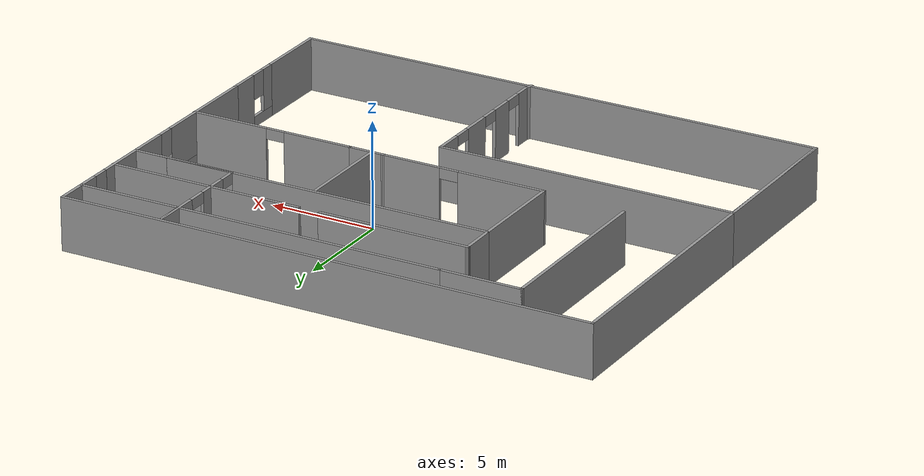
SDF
<?xml version='1.0'?>
<sdf version='1.6'>
  <model name='factory_wall'>
    <pose frame=''>-2.40759 -1.85219 0 0 -0 0</pose>
    <link name='Wall_11'>
      <pose frame=''>8.76238 -0.332391 0 0 -0 0</pose>
      <visual name='Wall_11_Visual_0'>
        <pose frame=''>-2.32414 0 1.25 0 -0 0</pose>
        <geometry>
          <box>
            <size>3.35171 0.15 2.5</size>
          </box>
        </geometry>
        <material>
          <script>
            <uri>file://media/materials/scripts/gazebo.material</uri>
            <name>Gazebo/Grey</name>
          </script>
          <ambient>1 1 1 1</ambient>
        </material>
        <meta>
          <layer>0</layer>
        </meta>
      </visual>
      <collision name='Wall_11_Collision_0'>
        <geometry>
          <box>
            <size>3.35171 0.15 2.5</size>
          </box>
        </geometry>
        <pose frame=''>-2.32414 0 1.25 0 -0 0</pose>
      </collision>
      <visual name='Wall_11_Visual_1'>
        <pose frame=''>2.12586 0 1.25 0 -0 0</pose>
        <geometry>
          <box>
            <size>3.74829 0.15 2.5</size>
          </box>
        </geometry>
        <material>
          <script>
            <uri>file://media/materials/scripts/gazebo.material</uri>
            <name>Gazebo/Grey</name>
          </script>
          <ambient>1 1 1 1</ambient>
        </material>
        <meta>
          <layer>0</layer>
        </meta>
      </visual>
      <collision name='Wall_11_Collision_1'>
        <geometry>
          <box>
            <size>3.74829 0.15 2.5</size>
          </box>
        </geometry>
        <pose frame=''>2.12586 0 1.25 0 -0 0</pose>
      </collision>
      <visual name='Wall_11_Visual_2'>
        <pose frame=''>-0.198286 0 2.25 0 -0 0</pose>
        <geometry>
          <box>
            <size>0.9 0.15 0.5</size>
          </box>
        </geometry>
        <material>
          <script>
            <uri>file://media/materials/scripts/gazebo.material</uri>
            <name>Gazebo/Grey</name>
          </script>
          <ambient>1 1 1 1</ambient>
        </material>
        <meta>
          <layer>0</layer>
        </meta>
      </visual>
      <collision name='Wall_11_Collision_2'>
        <geometry>
          <box>
            <size>0.9 0.15 0.5</size>
          </box>
        </geometry>
        <pose frame=''>-0.198286 0 2.25 0 -0 0</pose>
      </collision>
    </link>
    <link name='Wall_13'>
      <pose frame=''>-0.762375 -0.322535 0 0 -0 3.14159</pose>
      <visual name='Wall_13_Visual_0'>
        <pose frame=''>-2.55074 0 1.25 0 -0 0</pose>
        <geometry>
          <box>
            <size>2.89852 0.15 2.5</size>
          </box>
        </geometry>
        <material>
          <script>
            <uri>file://media/materials/scripts/gazebo.material</uri>
            <name>Gazebo/Grey</name>
          </script>
          <ambient>1 1 1 1</ambient>
        </material>
        <meta>
          <layer>0</layer>
        </meta>
      </visual>
      <collision name='Wall_13_Collision_0'>
        <geometry>
          <box>
            <size>2.89852 0.15 2.5</size>
          </box>
        </geometry>
        <pose frame=''>-2.55074 0 1.25 0 -0 0</pose>
      </collision>
      <visual name='Wall_13_Visual_1'>
        <pose frame=''>1.89926 0 1.25 0 -0 0</pose>
        <geometry>
          <box>
            <size>4.20148 0.15 2.5</size>
          </box>
        </geometry>
        <material>
          <script>
            <uri>file://media/materials/scripts/gazebo.material</uri>
            <name>Gazebo/Grey</name>
          </script>
          <ambient>1 1 1 1</ambient>
        </material>
        <meta>
          <layer>0</layer>
        </meta>
      </visual>
      <collision name='Wall_13_Collision_1'>
        <geometry>
          <box>
            <size>4.20148 0.15 2.5</size>
          </box>
        </geometry>
        <pose frame=''>1.89926 0 1.25 0 -0 0</pose>
      </collision>
      <visual name='Wall_13_Visual_2'>
        <pose frame=''>-0.651482 0 2.25 0 -0 0</pose>
        <geometry>
          <box>
            <size>0.9 0.15 0.5</size>
          </box>
        </geometry>
        <material>
          <script>
            <uri>file://media/materials/scripts/gazebo.material</uri>
            <name>Gazebo/Grey</name>
          </script>
          <ambient>1 1 1 1</ambient>
        </material>
        <meta>
          <layer>0</layer>
        </meta>
      </visual>
      <collision name='Wall_13_Collision_2'>
        <geometry>
          <box>
            <size>0.9 0.15 0.5</size>
          </box>
        </geometry>
        <pose frame=''>-0.651482 0 2.25 0 -0 0</pose>
      </collision>
    </link>
    <link name='Wall_15'>
      <collision name='Wall_15_Collision'>
        <geometry>
          <box>
            <size>5 0.15 2.5</size>
          </box>
        </geometry>
        <pose frame=''>0 0 1.25 0 -0 0</pose>
      </collision>
      <visual name='Wall_15_Visual'>
        <pose frame=''>0 0 1.25 0 -0 0</pose>
        <geometry>
          <box>
            <size>5 0.15 2.5</size>
          </box>
        </geometry>
        <material>
          <script>
            <uri>file://media/materials/scripts/gazebo.material</uri>
            <name>Gazebo/Grey</name>
          </script>
          <ambient>1 1 1 1</ambient>
        </material>
        <meta>
          <layer>0</layer>
        </meta>
      </visual>
      <pose frame=''>-4.68738 2.10247 0 0 -0 1.5708</pose>
    </link>
    <link name='Wall_16'>
      <collision name='Wall_16_Collision'>
        <geometry>
          <box>
            <size>17.5 0.15 2.5</size>
          </box>
        </geometry>
        <pose frame=''>0 0 1.25 0 -0 0</pose>
      </collision>
      <visual name='Wall_16_Visual'>
        <pose frame=''>0 0 1.25 0 -0 0</pose>
        <geometry>
          <box>
            <size>17.5 0.15 2.5</size>
          </box>
        </geometry>
        <material>
          <script>
            <uri>file://media/materials/scripts/gazebo.material</uri>
            <name>Gazebo/Grey</name>
          </script>
          <ambient>1 1 1 1</ambient>
        </material>
        <meta>
          <layer>0</layer>
        </meta>
      </visual>
      <pose frame=''>3.98762 4.52747 0 0 -0 0</pose>
    </link>
    <link name='Wall_17'>
      <pose frame=''>12.6626 2.10247 0 0 -0 -1.5708</pose>
      <visual name='Wall_17_Visual_0'>
        <pose frame=''>-1.48655 0 1.25 0 -0 0</pose>
        <geometry>
          <box>
            <size>2.0269 0.15 2.5</size>
          </box>
        </geometry>
        <material>
          <script>
            <uri>file://media/materials/scripts/gazebo.material</uri>
            <name>Gazebo/Grey</name>
          </script>
          <ambient>1 1 1 1</ambient>
        </material>
        <meta>
          <layer>0</layer>
        </meta>
      </visual>
      <collision name='Wall_17_Collision_0'>
        <geometry>
          <box>
            <size>2.0269 0.15 2.5</size>
          </box>
        </geometry>
        <pose frame=''>-1.48655 0 1.25 0 -0 0</pose>
      </collision>
      <visual name='Wall_17_Visual_1'>
        <pose frame=''>1.01345 0 0.25 0 -0 0</pose>
        <geometry>
          <box>
            <size>2.9731 0.15 0.5</size>
          </box>
        </geometry>
        <material>
          <script>
            <uri>file://media/materials/scripts/gazebo.material</uri>
            <name>Gazebo/Grey</name>
          </script>
          <ambient>1 1 1 1</ambient>
        </material>
        <meta>
          <layer>0</layer>
        </meta>
      </visual>
      <collision name='Wall_17_Collision_1'>
        <geometry>
          <box>
            <size>2.9731 0.15 0.5</size>
          </box>
        </geometry>
        <pose frame=''>1.01345 0 0.25 0 -0 0</pose>
      </collision>
      <visual name='Wall_17_Visual_2'>
        <pose frame=''>1.41345 0 1.5 0 -0 0</pose>
        <geometry>
          <box>
            <size>2.1731 0.15 2</size>
          </box>
        </geometry>
        <material>
          <script>
            <uri>file://media/materials/scripts/gazebo.material</uri>
            <name>Gazebo/Grey</name>
          </script>
          <ambient>1 1 1 1</ambient>
        </material>
        <meta>
          <layer>0</layer>
        </meta>
      </visual>
      <collision name='Wall_17_Collision_2'>
        <geometry>
          <box>
            <size>2.1731 0.15 2</size>
          </box>
        </geometry>
        <pose frame=''>1.41345 0 1.5 0 -0 0</pose>
      </collision>
      <visual name='Wall_17_Visual_3'>
        <pose frame=''>-0.073103 0 1.9 0 -0 0</pose>
        <geometry>
          <box>
            <size>0.8 0.15 1.2</size>
          </box>
        </geometry>
        <material>
          <script>
            <uri>file://media/materials/scripts/gazebo.material</uri>
            <name>Gazebo/Grey</name>
          </script>
          <ambient>1 1 1 1</ambient>
        </material>
        <meta>
          <layer>0</layer>
        </meta>
      </visual>
      <collision name='Wall_17_Collision_3'>
        <geometry>
          <box>
            <size>0.8 0.15 1.2</size>
          </box>
        </geometry>
        <pose frame=''>-0.073103 0 1.9 0 -0 0</pose>
      </collision>
    </link>
    <link name='Wall_19'>
      <collision name='Wall_19_Collision'>
        <geometry>
          <box>
            <size>3.5 0.15 2.5</size>
          </box>
        </geometry>
        <pose frame=''>0 0 1.25 0 -0 0</pose>
      </collision>
      <visual name='Wall_19_Visual'>
        <pose frame=''>0 0 1.25 0 -0 0</pose>
        <geometry>
          <box>
            <size>3.5 0.15 2.5</size>
          </box>
        </geometry>
        <material>
          <script>
            <uri>file://media/materials/scripts/gazebo.material</uri>
            <name>Gazebo/Grey</name>
          </script>
          <ambient>1 1 1 1</ambient>
        </material>
        <meta>
          <layer>0</layer>
        </meta>
      </visual>
      <pose frame=''>12.6626 -1.99754 0 0 -0 -1.5708</pose>
    </link>
    <link name='Wall_21'>
      <pose frame=''>12.6626 -5.09753 0 0 -0 -1.5708</pose>
      <visual name='Wall_21_Visual_0'>
        <pose frame=''>-0.751301 0 1.25 0 -0 0</pose>
        <geometry>
          <box>
            <size>1.4974 0.15 2.5</size>
          </box>
        </geometry>
        <material>
          <script>
            <uri>file://media/materials/scripts/gazebo.material</uri>
            <name>Gazebo/Grey</name>
          </script>
          <ambient>1 1 1 1</ambient>
        </material>
        <meta>
          <layer>0</layer>
        </meta>
      </visual>
      <collision name='Wall_21_Collision_0'>
        <geometry>
          <box>
            <size>1.4974 0.15 2.5</size>
          </box>
        </geometry>
        <pose frame=''>-0.751301 0 1.25 0 -0 0</pose>
      </collision>
      <visual name='Wall_21_Visual_1'>
        <pose frame=''>0.748699 0 0.25 0 -0 0</pose>
        <geometry>
          <box>
            <size>1.5026 0.15 0.5</size>
          </box>
        </geometry>
        <material>
          <script>
            <uri>file://media/materials/scripts/gazebo.material</uri>
            <name>Gazebo/Grey</name>
          </script>
          <ambient>1 1 1 1</ambient>
        </material>
        <meta>
          <layer>0</layer>
        </meta>
      </visual>
      <collision name='Wall_21_Collision_1'>
        <geometry>
          <box>
            <size>1.5026 0.15 0.5</size>
          </box>
        </geometry>
        <pose frame=''>0.748699 0 0.25 0 -0 0</pose>
      </collision>
      <visual name='Wall_21_Visual_2'>
        <pose frame=''>1.1487 0 1.5 0 -0 0</pose>
        <geometry>
          <box>
            <size>0.702603 0.15 2</size>
          </box>
        </geometry>
        <material>
          <script>
            <uri>file://media/materials/scripts/gazebo.material</uri>
            <name>Gazebo/Grey</name>
          </script>
          <ambient>1 1 1 1</ambient>
        </material>
        <meta>
          <layer>0</layer>
        </meta>
      </visual>
      <collision name='Wall_21_Collision_2'>
        <geometry>
          <box>
            <size>0.702603 0.15 2</size>
          </box>
        </geometry>
        <pose frame=''>1.1487 0 1.5 0 -0 0</pose>
      </collision>
      <visual name='Wall_21_Visual_3'>
        <pose frame=''>0.397397 0 1.9 0 -0 0</pose>
        <geometry>
          <box>
            <size>0.8 0.15 1.2</size>
          </box>
        </geometry>
        <material>
          <script>
            <uri>file://media/materials/scripts/gazebo.material</uri>
            <name>Gazebo/Grey</name>
          </script>
          <ambient>1 1 1 1</ambient>
        </material>
        <meta>
          <layer>0</layer>
        </meta>
      </visual>
      <collision name='Wall_21_Collision_3'>
        <geometry>
          <box>
            <size>0.8 0.15 1.2</size>
          </box>
        </geometry>
        <pose frame=''>0.397397 0 1.9 0 -0 0</pose>
      </collision>
    </link>
    <link name='Wall_23'>
      <collision name='Wall_23_Collision'>
        <geometry>
          <box>
            <size>3.75 0.15 2.5</size>
          </box>
        </geometry>
        <pose frame=''>0 0 1.25 0 -0 0</pose>
      </collision>
      <visual name='Wall_23_Visual'>
        <pose frame=''>0 0 1.25 0 -0 0</pose>
        <geometry>
          <box>
            <size>3.75 0.15 2.5</size>
          </box>
        </geometry>
        <material>
          <script>
            <uri>file://media/materials/scripts/gazebo.material</uri>
            <name>Gazebo/Grey</name>
          </script>
          <ambient>1 1 1 1</ambient>
        </material>
        <meta>
          <layer>0</layer>
        </meta>
      </visual>
      <pose frame=''>12.6626 -8.32254 0 0 -0 -1.5708</pose>
    </link>
    <link name='Wall_26'>
      <collision name='Wall_26_Collision'>
        <geometry>
          <box>
            <size>25.5 0.15 2.5</size>
          </box>
        </geometry>
        <pose frame=''>0 0 1.25 0 -0 0</pose>
      </collision>
      <visual name='Wall_26_Visual'>
        <pose frame=''>0 0 1.25 0 -0 0</pose>
        <geometry>
          <box>
            <size>25.5 0.15 2.5</size>
          </box>
        </geometry>
        <material>
          <script>
            <uri>file://media/materials/scripts/gazebo.material</uri>
            <name>Gazebo/Grey</name>
          </script>
          <ambient>1 1 1 1</ambient>
        </material>
        <meta>
          <layer>0</layer>
        </meta>
      </visual>
      <pose frame=''>-0.012375 -10.1225 0 0 -0 3.14159</pose>
    </link>
    <link name='Wall_27'>
      <collision name='Wall_27_Collision'>
        <geometry>
          <box>
            <size>20.5 0.15 2.5</size>
          </box>
        </geometry>
        <pose frame=''>0 0 1.25 0 -0 0</pose>
      </collision>
      <visual name='Wall_27_Visual'>
        <pose frame=''>0 0 1.25 0 -0 0</pose>
        <geometry>
          <box>
            <size>20.5 0.15 2.5</size>
          </box>
        </geometry>
        <material>
          <script>
            <uri>file://media/materials/scripts/gazebo.material</uri>
            <name>Gazebo/Grey</name>
          </script>
          <ambient>1 1 1 1</ambient>
        </material>
        <meta>
          <layer>0</layer>
        </meta>
      </visual>
      <pose frame=''>-12.6874 0.052465 0 0 -0 1.5708</pose>
    </link>
    <link name='Wall_29'>
      <collision name='Wall_29_Collision'>
        <geometry>
          <box>
            <size>25.5 0.15 2.5</size>
          </box>
        </geometry>
        <pose frame=''>0 0 1.25 0 -0 0</pose>
      </collision>
      <visual name='Wall_29_Visual'>
        <pose frame=''>0 0 1.25 0 -0 0</pose>
        <geometry>
          <box>
            <size>25.5 0.15 2.5</size>
          </box>
        </geometry>
        <material>
          <script>
            <uri>file://media/materials/scripts/gazebo.material</uri>
            <name>Gazebo/Grey</name>
          </script>
          <ambient>1 1 1 1</ambient>
        </material>
        <meta>
          <layer>0</layer>
        </meta>
      </visual>
      <pose frame=''>-0.012375 10.2275 0 0 -0 0</pose>
    </link>
    <link name='Wall_30'>
      <pose frame=''>12.6626 7.37746 0 0 -0 -1.5708</pose>
      <visual name='Wall_30_Visual_0'>
        <pose frame=''>-1.65365 0 1.25 0 -0 0</pose>
        <geometry>
          <box>
            <size>2.5427 0.15 2.5</size>
          </box>
        </geometry>
        <material>
          <script>
            <uri>file://media/materials/scripts/gazebo.material</uri>
            <name>Gazebo/Grey</name>
          </script>
          <ambient>1 1 1 1</ambient>
        </material>
        <meta>
          <layer>0</layer>
        </meta>
      </visual>
      <collision name='Wall_30_Collision_0'>
        <geometry>
          <box>
            <size>2.5427 0.15 2.5</size>
          </box>
        </geometry>
        <pose frame=''>-1.65365 0 1.25 0 -0 0</pose>
      </collision>
      <visual name='Wall_30_Visual_1'>
        <pose frame=''>1.27135 0 0.25 0 -0 0</pose>
        <geometry>
          <box>
            <size>3.3073 0.15 0.5</size>
          </box>
        </geometry>
        <material>
          <script>
            <uri>file://media/materials/scripts/gazebo.material</uri>
            <name>Gazebo/Grey</name>
          </script>
          <ambient>1 1 1 1</ambient>
        </material>
        <meta>
          <layer>0</layer>
        </meta>
      </visual>
      <collision name='Wall_30_Collision_1'>
        <geometry>
          <box>
            <size>3.3073 0.15 0.5</size>
          </box>
        </geometry>
        <pose frame=''>1.27135 0 0.25 0 -0 0</pose>
      </collision>
      <visual name='Wall_30_Visual_2'>
        <pose frame=''>1.67135 0 1.5 0 -0 0</pose>
        <geometry>
          <box>
            <size>2.5073 0.15 2</size>
          </box>
        </geometry>
        <material>
          <script>
            <uri>file://media/materials/scripts/gazebo.material</uri>
            <name>Gazebo/Grey</name>
          </script>
          <ambient>1 1 1 1</ambient>
        </material>
        <meta>
          <layer>0</layer>
        </meta>
      </visual>
      <collision name='Wall_30_Collision_2'>
        <geometry>
          <box>
            <size>2.5073 0.15 2</size>
          </box>
        </geometry>
        <pose frame=''>1.67135 0 1.5 0 -0 0</pose>
      </collision>
      <visual name='Wall_30_Visual_3'>
        <pose frame=''>0.017697 0 1.9 0 -0 0</pose>
        <geometry>
          <box>
            <size>0.8 0.15 1.2</size>
          </box>
        </geometry>
        <material>
          <script>
            <uri>file://media/materials/scripts/gazebo.material</uri>
            <name>Gazebo/Grey</name>
          </script>
          <ambient>1 1 1 1</ambient>
        </material>
        <meta>
          <layer>0</layer>
        </meta>
      </visual>
      <collision name='Wall_30_Collision_3'>
        <geometry>
          <box>
            <size>0.8 0.15 1.2</size>
          </box>
        </geometry>
        <pose frame=''>0.017697 0 1.9 0 -0 0</pose>
      </collision>
    </link>
    <link name='Wall_32'>
      <collision name='Wall_32_Collision'>
        <geometry>
          <box>
            <size>5 0.15 2.5</size>
          </box>
        </geometry>
        <pose frame=''>0 0 1.25 0 -0 0</pose>
      </collision>
      <visual name='Wall_32_Visual'>
        <pose frame=''>0 0 1.25 0 -0 0</pose>
        <geometry>
          <box>
            <size>5 0.15 2.5</size>
          </box>
        </geometry>
        <material>
          <script>
            <uri>file://media/materials/scripts/gazebo.material</uri>
            <name>Gazebo/Grey</name>
          </script>
          <ambient>1 1 1 1</ambient>
        </material>
        <meta>
          <layer>0</layer>
        </meta>
      </visual>
      <pose frame=''>10.2376 4.52747 0 0 -0 3.14159</pose>
    </link>
    <link name='Wall_33'>
      <pose frame=''>7.81262 7.32747 0 0 -0 1.5708</pose>
      <visual name='Wall_33_Visual_0'>
        <pose frame=''>-2.86985 0 1.25 0 -0 0</pose>
        <geometry>
          <box>
            <size>0.010298 0.15 2.5</size>
          </box>
        </geometry>
        <material>
          <script>
            <uri>file://media/materials/scripts/gazebo.material</uri>
            <name>Gazebo/Grey</name>
          </script>
          <ambient>1 1 1 1</ambient>
        </material>
        <meta>
          <layer>0</layer>
        </meta>
      </visual>
      <collision name='Wall_33_Collision_0'>
        <geometry>
          <box>
            <size>0.010298 0.15 2.5</size>
          </box>
        </geometry>
        <pose frame=''>-2.86985 0 1.25 0 -0 0</pose>
      </collision>
      <visual name='Wall_33_Visual_1'>
        <pose frame=''>-1.19 0 1.25 0 -0 0</pose>
        <geometry>
          <box>
            <size>1.54941 0.15 2.5</size>
          </box>
        </geometry>
        <material>
          <script>
            <uri>file://media/materials/scripts/gazebo.material</uri>
            <name>Gazebo/Grey</name>
          </script>
          <ambient>1 1 1 1</ambient>
        </material>
        <meta>
          <layer>0</layer>
        </meta>
      </visual>
      <collision name='Wall_33_Collision_1'>
        <geometry>
          <box>
            <size>1.54941 0.15 2.5</size>
          </box>
        </geometry>
        <pose frame=''>-1.19 0 1.25 0 -0 0</pose>
      </collision>
      <visual name='Wall_33_Visual_2'>
        <pose frame=''>1.67985 0 1.25 0 -0 0</pose>
        <geometry>
          <box>
            <size>2.3903 0.15 2.5</size>
          </box>
        </geometry>
        <material>
          <script>
            <uri>file://media/materials/scripts/gazebo.material</uri>
            <name>Gazebo/Grey</name>
          </script>
          <ambient>1 1 1 1</ambient>
        </material>
        <meta>
          <layer>0</layer>
        </meta>
      </visual>
      <collision name='Wall_33_Collision_2'>
        <geometry>
          <box>
            <size>2.3903 0.15 2.5</size>
          </box>
        </geometry>
        <pose frame=''>1.67985 0 1.25 0 -0 0</pose>
      </collision>
      <visual name='Wall_33_Visual_3'>
        <pose frame=''>-2.4147 0 2.25 0 -0 0</pose>
        <geometry>
          <box>
            <size>0.9 0.15 0.5</size>
          </box>
        </geometry>
        <material>
          <script>
            <uri>file://media/materials/scripts/gazebo.material</uri>
            <name>Gazebo/Grey</name>
          </script>
          <ambient>1 1 1 1</ambient>
        </material>
        <meta>
          <layer>0</layer>
        </meta>
      </visual>
      <collision name='Wall_33_Collision_3'>
        <geometry>
          <box>
            <size>0.9 0.15 0.5</size>
          </box>
        </geometry>
        <pose frame=''>-2.4147 0 2.25 0 -0 0</pose>
      </collision>
      <visual name='Wall_33_Visual_4'>
        <pose frame=''>0.034704 0 2.25 0 -0 0</pose>
        <geometry>
          <box>
            <size>0.9 0.15 0.5</size>
          </box>
        </geometry>
        <material>
          <script>
            <uri>file://media/materials/scripts/gazebo.material</uri>
            <name>Gazebo/Grey</name>
          </script>
          <ambient>1 1 1 1</ambient>
        </material>
        <meta>
          <layer>0</layer>
        </meta>
      </visual>
      <collision name='Wall_33_Collision_4'>
        <geometry>
          <box>
            <size>0.9 0.15 0.5</size>
          </box>
        </geometry>
        <pose frame=''>0.034704 0 2.25 0 -0 0</pose>
      </collision>
    </link>
    <link name='Wall_35'>
      <collision name='Wall_35_Collision'>
        <geometry>
          <box>
            <size>1.82478 0.15 2.5</size>
          </box>
        </geometry>
        <pose frame=''>0 0 1.25 0 -0 0</pose>
      </collision>
      <visual name='Wall_35_Visual'>
        <pose frame=''>0 0 1.25 0 -0 0</pose>
        <geometry>
          <box>
            <size>1.82478 0.15 2.5</size>
          </box>
        </geometry>
        <material>
          <script>
            <uri>file://media/materials/scripts/gazebo.material</uri>
            <name>Gazebo/Grey</name>
          </script>
          <ambient>1 1 1 1</ambient>
        </material>
        <meta>
          <layer>0</layer>
        </meta>
      </visual>
      <pose frame=''>4 -0.327463 0 0 -0 3.13571</pose>
    </link>
    <link name='Wall_39'>
      <collision name='Wall_39_Collision'>
        <geometry>
          <box>
            <size>5 0.15 2.5</size>
          </box>
        </geometry>
        <pose frame=''>0 0 1.25 0 -0 0</pose>
      </collision>
      <visual name='Wall_39_Visual'>
        <pose frame=''>0 0 1.25 0 -0 0</pose>
        <geometry>
          <box>
            <size>5 0.15 2.5</size>
          </box>
        </geometry>
        <material>
          <script>
            <uri>file://media/materials/scripts/gazebo.material</uri>
            <name>Gazebo/Grey</name>
          </script>
          <ambient>1 1 1 1</ambient>
        </material>
        <meta>
          <layer>0</layer>
        </meta>
      </visual>
      <pose frame=''>3.7367 2.09148 0 0 -0 -1.5708</pose>
    </link>
    <link name='Wall_43'>
      <pose frame=''>7.81262 9.45247 0 0 -0 -1.5708</pose>
      <visual name='Wall_43_Visual_0'>
        <pose frame=''>-0.716597 0 1.25 0 -0 0</pose>
        <geometry>
          <box>
            <size>0.066805 0.15 2.5</size>
          </box>
        </geometry>
        <material>
          <script>
            <uri>file://media/materials/scripts/gazebo.material</uri>
            <name>Gazebo/Grey</name>
          </script>
          <ambient>1 1 1 1</ambient>
        </material>
        <meta>
          <layer>0</layer>
        </meta>
      </visual>
      <collision name='Wall_43_Collision_0'>
        <geometry>
          <box>
            <size>0.066805 0.15 2.5</size>
          </box>
        </geometry>
        <pose frame=''>-0.716597 0 1.25 0 -0 0</pose>
      </collision>
      <visual name='Wall_43_Visual_1'>
        <pose frame=''>0.483403 0 1.25 0 -0 0</pose>
        <geometry>
          <box>
            <size>0.533195 0.15 2.5</size>
          </box>
        </geometry>
        <material>
          <script>
            <uri>file://media/materials/scripts/gazebo.material</uri>
            <name>Gazebo/Grey</name>
          </script>
          <ambient>1 1 1 1</ambient>
        </material>
        <meta>
          <layer>0</layer>
        </meta>
      </visual>
      <collision name='Wall_43_Collision_1'>
        <geometry>
          <box>
            <size>0.533195 0.15 2.5</size>
          </box>
        </geometry>
        <pose frame=''>0.483403 0 1.25 0 -0 0</pose>
      </collision>
      <visual name='Wall_43_Visual_2'>
        <pose frame=''>-0.233195 0 2.25 0 -0 0</pose>
        <geometry>
          <box>
            <size>0.9 0.15 0.5</size>
          </box>
        </geometry>
        <material>
          <script>
            <uri>file://media/materials/scripts/gazebo.material</uri>
            <name>Gazebo/Grey</name>
          </script>
          <ambient>1 1 1 1</ambient>
        </material>
        <meta>
          <layer>0</layer>
        </meta>
      </visual>
      <collision name='Wall_43_Collision_2'>
        <geometry>
          <box>
            <size>0.9 0.15 0.5</size>
          </box>
        </geometry>
        <pose frame=''>-0.233195 0 2.25 0 -0 0</pose>
      </collision>
    </link>
    <link name='Wall_45'>
      <collision name='Wall_45_Collision'>
        <geometry>
          <box>
            <size>5 0.15 2.5</size>
          </box>
        </geometry>
        <pose frame=''>0 0 1.25 0 -0 0</pose>
      </collision>
      <visual name='Wall_45_Visual'>
        <pose frame=''>0 0 1.25 0 -0 0</pose>
        <geometry>
          <box>
            <size>5 0.15 2.5</size>
          </box>
        </geometry>
        <material>
          <script>
            <uri>file://media/materials/scripts/gazebo.material</uri>
            <name>Gazebo/Grey</name>
          </script>
          <ambient>1 1 1 1</ambient>
        </material>
        <meta>
          <layer>0</layer>
        </meta>
      </visual>
      <pose frame=''>10.2376 8.77746 0 0 -0 0</pose>
    </link>
    <link name='Wall_48'>
      <collision name='Wall_48_Collision'>
        <geometry>
          <box>
            <size>5 0.15 2.5</size>
          </box>
        </geometry>
        <pose frame=''>0 0 1.25 0 -0 0</pose>
      </collision>
      <visual name='Wall_48_Visual'>
        <pose frame=''>0 0 1.25 0 -0 0</pose>
        <geometry>
          <box>
            <size>5 0.15 2.5</size>
          </box>
        </geometry>
        <material>
          <script>
            <uri>file://media/materials/scripts/gazebo.material</uri>
            <name>Gazebo/Grey</name>
          </script>
          <ambient>1 1 1 1</ambient>
        </material>
        <meta>
          <layer>0</layer>
        </meta>
      </visual>
      <pose frame=''>10.2529 6.2452 0 0 -0 0</pose>
    </link>
    <link name='Wall_56'>
      <collision name='Wall_56_Collision'>
        <geometry>
          <box>
            <size>12.75 0.15 2.5</size>
          </box>
        </geometry>
        <pose frame=''>0 0 1.25 0 -0 0</pose>
      </collision>
      <visual name='Wall_56_Visual'>
        <pose frame=''>0 0 1.25 0 -0 0</pose>
        <geometry>
          <box>
            <size>12.75 0.15 2.5</size>
          </box>
        </geometry>
        <material>
          <script>
            <uri>file://media/materials/scripts/gazebo.material</uri>
            <name>Gazebo/Grey</name>
          </script>
          <ambient>1 1 1 1</ambient>
        </material>
        <meta>
          <layer>0</layer>
        </meta>
      </visual>
      <pose frame=''>1.51263 8.77746 0 0 -0 3.14159</pose>
    </link>
    <link name='Wall_60'>
      <collision name='Wall_60_Collision'>
        <geometry>
          <box>
            <size>4.5 0.15 2.5</size>
          </box>
        </geometry>
        <pose frame=''>0 0 1.25 0 -0 0</pose>
      </collision>
      <visual name='Wall_60_Visual'>
        <pose frame=''>0 0 1.25 0 -0 0</pose>
        <geometry>
          <box>
            <size>4.5 0.15 2.5</size>
          </box>
        </geometry>
        <material>
          <script>
            <uri>file://media/materials/scripts/gazebo.material</uri>
            <name>Gazebo/Grey</name>
          </script>
          <ambient>1 1 1 1</ambient>
        </material>
        <meta>
          <layer>0</layer>
        </meta>
      </visual>
      <pose frame=''>5.65289 6.2452 0 0 -0 3.14159</pose>
    </link>
    <link name='Wall_63'>
      <collision name='Wall_63_Collision'>
        <geometry>
          <box>
            <size>7.25 0.15 2.5</size>
          </box>
        </geometry>
        <pose frame=''>0 0 1.25 0 -0 0</pose>
      </collision>
      <visual name='Wall_63_Visual'>
        <pose frame=''>0 0 1.25 0 -0 0</pose>
        <geometry>
          <box>
            <size>7.25 0.15 2.5</size>
          </box>
        </geometry>
        <material>
          <script>
            <uri>file://media/materials/scripts/gazebo.material</uri>
            <name>Gazebo/Grey</name>
          </script>
          <ambient>1 1 1 1</ambient>
        </material>
        <meta>
          <layer>0</layer>
        </meta>
      </visual>
      <pose frame=''>-1.1525 6.24832 0 0 -0 3.14159</pose>
    </link>
    <link name='Wall_64'>
      <collision name='Wall_64_Collision'>
        <geometry>
          <box>
            <size>1.87093 0.15 2.5</size>
          </box>
        </geometry>
        <pose frame=''>0 0 1.25 0 -0 0</pose>
      </collision>
      <visual name='Wall_64_Visual'>
        <pose frame=''>0 0 1.25 0 -0 0</pose>
        <geometry>
          <box>
            <size>1.87093 0.15 2.5</size>
          </box>
        </geometry>
        <material>
          <script>
            <uri>file://media/materials/scripts/gazebo.material</uri>
            <name>Gazebo/Grey</name>
          </script>
          <ambient>1 1 1 1</ambient>
        </material>
        <meta>
          <layer>0</layer>
        </meta>
      </visual>
      <pose frame=''>-4.69494 5.38789 0 0 -0 -1.56201</pose>
    </link>
    <link name='Wall_66'>
      <collision name='Wall_66_Collision'>
        <geometry>
          <box>
            <size>4 0.15 2.5</size>
          </box>
        </geometry>
        <pose frame=''>0 0 1.25 0 -0 0</pose>
      </collision>
      <visual name='Wall_66_Visual'>
        <pose frame=''>0 0 1.25 0 -0 0</pose>
        <geometry>
          <box>
            <size>4 0.15 2.5</size>
          </box>
        </geometry>
        <material>
          <script>
            <uri>file://media/materials/scripts/gazebo.material</uri>
            <name>Gazebo/Grey</name>
          </script>
          <ambient>1 1 1 1</ambient>
        </material>
        <meta>
          <layer>0</layer>
        </meta>
      </visual>
      <pose frame=''>-6.71237 8.77746 0 0 -0 3.14159</pose>
    </link>
    <link name='Wall_67'>
      <collision name='Wall_67_Collision'>
        <geometry>
          <box>
            <size>9 0.15 2.5</size>
          </box>
        </geometry>
        <pose frame=''>0 0 1.25 0 -0 0</pose>
      </collision>
      <visual name='Wall_67_Visual'>
        <pose frame=''>0 0 1.25 0 -0 0</pose>
        <geometry>
          <box>
            <size>9 0.15 2.5</size>
          </box>
        </geometry>
        <material>
          <script>
            <uri>file://media/materials/scripts/gazebo.material</uri>
            <name>Gazebo/Grey</name>
          </script>
          <ambient>1 1 1 1</ambient>
        </material>
        <meta>
          <layer>0</layer>
        </meta>
      </visual>
      <pose frame=''>-8.63738 4.35246 0 0 -0 -1.5708</pose>
    </link>
    <link name='Wall_69'>
      <collision name='Wall_69_Collision'>
        <geometry>
          <box>
            <size>8 0.15 2.5</size>
          </box>
        </geometry>
        <pose frame=''>0 0 1.25 0 -0 0</pose>
      </collision>
      <visual name='Wall_69_Visual'>
        <pose frame=''>0 0 1.25 0 -0 0</pose>
        <geometry>
          <box>
            <size>8 0.15 2.5</size>
          </box>
        </geometry>
        <material>
          <script>
            <uri>file://media/materials/scripts/gazebo.material</uri>
            <name>Gazebo/Grey</name>
          </script>
          <ambient>1 1 1 1</ambient>
        </material>
        <meta>
          <layer>0</layer>
        </meta>
      </visual>
      <pose frame=''>-12.6874 -6.19754 0 0 -0 1.5708</pose>
    </link>
    <link name='Wall_70'>
      <collision name='Wall_70_Collision'>
        <geometry>
          <box>
            <size>14.25 0.15 2.5</size>
          </box>
        </geometry>
        <pose frame=''>0 0 1.25 0 -0 0</pose>
      </collision>
      <visual name='Wall_70_Visual'>
        <pose frame=''>0 0 1.25 0 -0 0</pose>
        <geometry>
          <box>
            <size>14.25 0.15 2.5</size>
          </box>
        </geometry>
        <material>
          <script>
            <uri>file://media/materials/scripts/gazebo.material</uri>
            <name>Gazebo/Grey</name>
          </script>
          <ambient>1 1 1 1</ambient>
        </material>
        <meta>
          <layer>0</layer>
        </meta>
      </visual>
      <pose frame=''>-5.63737 -2.27253 0 0 -0 0</pose>
    </link>
    <link name='Wall_71'>
      <pose frame=''>1.41263 -6.07254 0 0 -0 -1.5708</pose>
      <visual name='Wall_71_Visual_0'>
        <pose frame=''>-3.15123 0 1.25 0 -0 0</pose>
        <geometry>
          <box>
            <size>1.44753 0.15 2.5</size>
          </box>
        </geometry>
        <material>
          <script>
            <uri>file://media/materials/scripts/gazebo.material</uri>
            <name>Gazebo/Grey</name>
          </script>
          <ambient>1 1 1 1</ambient>
        </material>
        <meta>
          <layer>0</layer>
        </meta>
      </visual>
      <collision name='Wall_71_Collision_0'>
        <geometry>
          <box>
            <size>1.44753 0.15 2.5</size>
          </box>
        </geometry>
        <pose frame=''>-3.15123 0 1.25 0 -0 0</pose>
      </collision>
      <visual name='Wall_71_Visual_1'>
        <pose frame=''>-0.765536 0 1.25 0 -0 0</pose>
        <geometry>
          <box>
            <size>1.52386 0.15 2.5</size>
          </box>
        </geometry>
        <material>
          <script>
            <uri>file://media/materials/scripts/gazebo.material</uri>
            <name>Gazebo/Grey</name>
          </script>
          <ambient>1 1 1 1</ambient>
        </material>
        <meta>
          <layer>0</layer>
        </meta>
      </visual>
      <collision name='Wall_71_Collision_1'>
        <geometry>
          <box>
            <size>1.52386 0.15 2.5</size>
          </box>
        </geometry>
        <pose frame=''>-0.765536 0 1.25 0 -0 0</pose>
      </collision>
      <visual name='Wall_71_Visual_2'>
        <pose frame=''>1.50126 0 1.25 0 -0 0</pose>
        <geometry>
          <box>
            <size>1.20974 0.15 2.5</size>
          </box>
        </geometry>
        <material>
          <script>
            <uri>file://media/materials/scripts/gazebo.material</uri>
            <name>Gazebo/Grey</name>
          </script>
          <ambient>1 1 1 1</ambient>
        </material>
        <meta>
          <layer>0</layer>
        </meta>
      </visual>
      <collision name='Wall_71_Collision_2'>
        <geometry>
          <box>
            <size>1.20974 0.15 2.5</size>
          </box>
        </geometry>
        <pose frame=''>1.50126 0 1.25 0 -0 0</pose>
      </collision>
      <visual name='Wall_71_Visual_3'>
        <pose frame=''>3.44057 0 1.25 0 -0 0</pose>
        <geometry>
          <box>
            <size>0.868867 0.15 2.5</size>
          </box>
        </geometry>
        <material>
          <script>
            <uri>file://media/materials/scripts/gazebo.material</uri>
            <name>Gazebo/Grey</name>
          </script>
          <ambient>1 1 1 1</ambient>
        </material>
        <meta>
          <layer>0</layer>
        </meta>
      </visual>
      <collision name='Wall_71_Collision_3'>
        <geometry>
          <box>
            <size>0.868867 0.15 2.5</size>
          </box>
        </geometry>
        <pose frame=''>3.44057 0 1.25 0 -0 0</pose>
      </collision>
      <visual name='Wall_71_Visual_4'>
        <pose frame=''>-1.97747 0 2.25 0 -0 0</pose>
        <geometry>
          <box>
            <size>0.9 0.15 0.5</size>
          </box>
        </geometry>
        <material>
          <script>
            <uri>file://media/materials/scripts/gazebo.material</uri>
            <name>Gazebo/Grey</name>
          </script>
          <ambient>1 1 1 1</ambient>
        </material>
        <meta>
          <layer>0</layer>
        </meta>
      </visual>
      <collision name='Wall_71_Collision_4'>
        <geometry>
          <box>
            <size>0.9 0.15 0.5</size>
          </box>
        </geometry>
        <pose frame=''>-1.97747 0 2.25 0 -0 0</pose>
      </collision>
      <visual name='Wall_71_Visual_5'>
        <pose frame=''>0.446394 0 2.25 0 -0 0</pose>
        <geometry>
          <box>
            <size>0.9 0.15 0.5</size>
          </box>
        </geometry>
        <material>
          <script>
            <uri>file://media/materials/scripts/gazebo.material</uri>
            <name>Gazebo/Grey</name>
          </script>
          <ambient>1 1 1 1</ambient>
        </material>
        <meta>
          <layer>0</layer>
        </meta>
      </visual>
      <collision name='Wall_71_Collision_5'>
        <geometry>
          <box>
            <size>0.9 0.15 0.5</size>
          </box>
        </geometry>
        <pose frame=''>0.446394 0 2.25 0 -0 0</pose>
      </collision>
      <visual name='Wall_71_Visual_6'>
        <pose frame=''>2.55613 0 2.25 0 -0 0</pose>
        <geometry>
          <box>
            <size>0.9 0.15 0.5</size>
          </box>
        </geometry>
        <material>
          <script>
            <uri>file://media/materials/scripts/gazebo.material</uri>
            <name>Gazebo/Grey</name>
          </script>
          <ambient>1 1 1 1</ambient>
        </material>
        <meta>
          <layer>0</layer>
        </meta>
      </visual>
      <collision name='Wall_71_Collision_6'>
        <geometry>
          <box>
            <size>0.9 0.15 0.5</size>
          </box>
        </geometry>
        <pose frame=''>2.55613 0 2.25 0 -0 0</pose>
      </collision>
    </link>
    <link name='Wall_72'>
      <collision name='Wall_72_Collision'>
        <geometry>
          <box>
            <size>0.5 0.15 2.5</size>
          </box>
        </geometry>
        <pose frame=''>0 0 1.25 0 -0 0</pose>
      </collision>
      <visual name='Wall_72_Visual'>
        <pose frame=''>0 0 1.25 0 -0 0</pose>
        <geometry>
          <box>
            <size>0.5 0.15 2.5</size>
          </box>
        </geometry>
        <material>
          <script>
            <uri>file://media/materials/scripts/gazebo.material</uri>
            <name>Gazebo/Grey</name>
          </script>
          <ambient>1 1 1 1</ambient>
        </material>
        <meta>
          <layer>0</layer>
        </meta>
      </visual>
      <pose frame=''>1.36733 -10.0416 0 0 -0 -1.8326</pose>
    </link>
    <static>1</static>
  </model>
</sdf>
